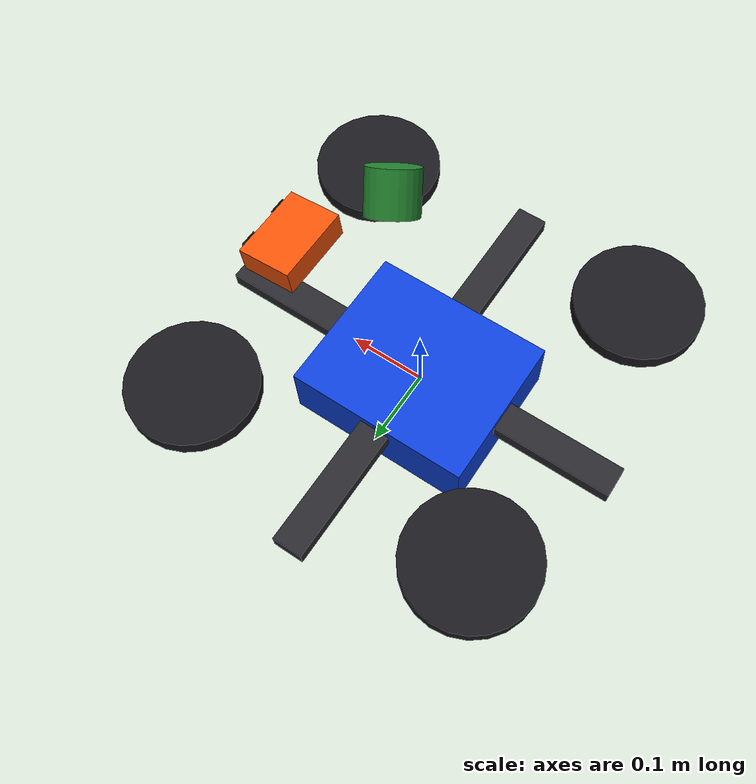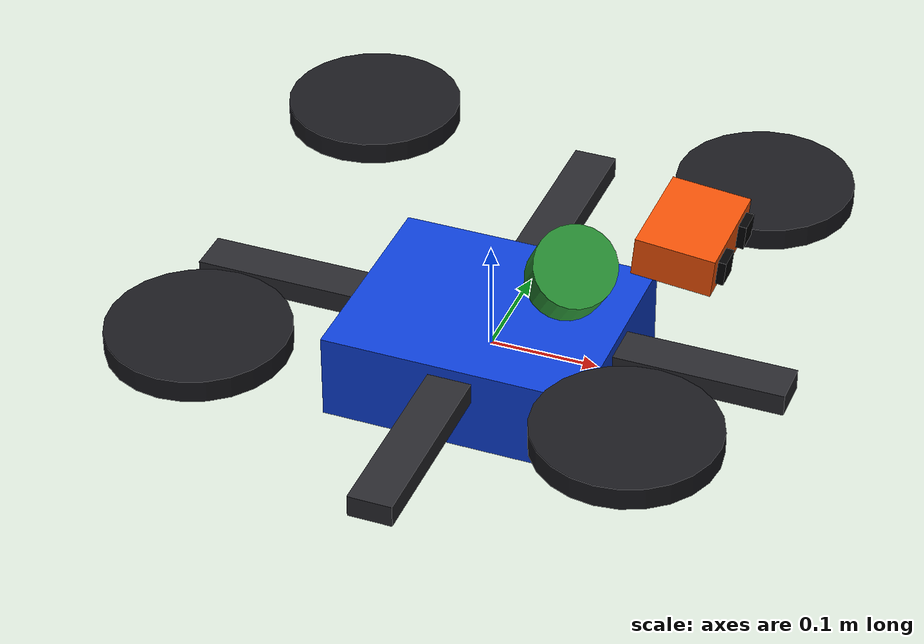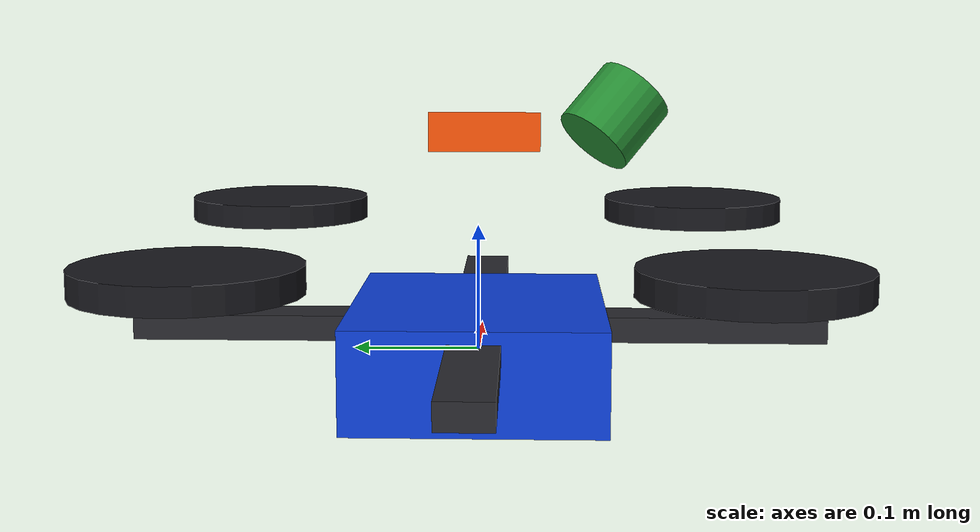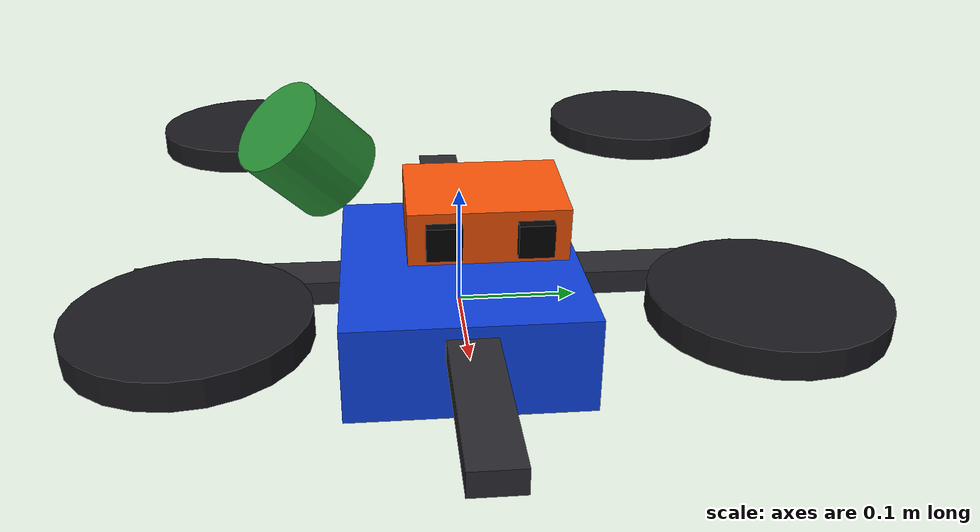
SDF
<?xml version="1.0"?>
<sdf version="1.9">
  <model name="uav_quad_mid360" xmlns:gz="http://gazebosim.org/schema">
    <link name="base_link">
      <inertial>
        <mass>1.5</mass>
        <inertia>
          <ixx>0.035</ixx>
          <iyy>0.035</iyy>
          <izz>0.06</izz>
        </inertia>
      </inertial>
      <collision name="collision">
        <geometry><box><size>0.55 0.55 0.10</size></box></geometry>
      </collision>
      <visual name="body_fuselage">
        <geometry><box><size>0.24 0.20 0.08</size></box></geometry>
        <material>
          <ambient>0.04 0.18 0.55 1</ambient>
          <diffuse>0.05 0.25 0.85 1</diffuse>
        </material>
      </visual>
      <visual name="arm_x">
        <pose>0 0 0.02 0 0 0</pose>
        <geometry><box><size>0.55 0.04 0.02</size></box></geometry>
        <material>
          <ambient>0.10 0.10 0.12 1</ambient>
          <diffuse>0.16 0.16 0.18 1</diffuse>
        </material>
      </visual>
      <visual name="arm_y">
        <pose>0 0 0.02 0 0 1.57079632679</pose>
        <geometry><box><size>0.55 0.04 0.02</size></box></geometry>
        <material>
          <ambient>0.10 0.10 0.12 1</ambient>
          <diffuse>0.16 0.16 0.18 1</diffuse>
        </material>
      </visual>
      <visual name="rotor_front_left">
        <pose>0.19 0.19 0.09 0 0 0</pose>
        <geometry><cylinder><radius>0.08</radius><length>0.02</length></cylinder></geometry>
        <material><ambient>0.05 0.05 0.06 1</ambient><diffuse>0.10 0.10 0.12 1</diffuse></material>
      </visual>
      <visual name="rotor_front_right">
        <pose>0.19 -0.19 0.09 0 0 0</pose>
        <geometry><cylinder><radius>0.08</radius><length>0.02</length></cylinder></geometry>
        <material><ambient>0.05 0.05 0.06 1</ambient><diffuse>0.10 0.10 0.12 1</diffuse></material>
      </visual>
      <visual name="rotor_rear_left">
        <pose>-0.19 0.19 0.09 0 0 0</pose>
        <geometry><cylinder><radius>0.08</radius><length>0.02</length></cylinder></geometry>
        <material><ambient>0.05 0.05 0.06 1</ambient><diffuse>0.10 0.10 0.12 1</diffuse></material>
      </visual>
      <visual name="rotor_rear_right">
        <pose>-0.19 -0.19 0.09 0 0 0</pose>
        <geometry><cylinder><radius>0.08</radius><length>0.02</length></cylinder></geometry>
        <material><ambient>0.05 0.05 0.06 1</ambient><diffuse>0.10 0.10 0.12 1</diffuse></material>
      </visual>
    </link>

    <!-- Gazebo cameras look along local +X. Positive pitch rotates +X toward
         the ground, so this forward-looking OAK-D mount has a 5-degree
         downward tilt relative to the UAV body. -->
    <link name="oakd_camera_link">
      <pose relative_to="base_link">0.18 0 0.16 0 0.08726646260 0</pose>
      <inertial>
        <mass>0.1</mass>
        <inertia>
          <ixx>0.0002</ixx>
          <iyy>0.0002</iyy>
          <izz>0.0002</izz>
        </inertia>
      </inertial>
      <visual name="camera_body">
        <geometry><box><size>0.07 0.10 0.035</size></box></geometry>
        <material>
          <ambient>0.55 0.15 0.01 1</ambient>
          <diffuse>0.95 0.32 0.03 1</diffuse>
        </material>
      </visual>
      <visual name="left_lens">
        <pose>0.038 0.028 0 0 0 0</pose>
        <geometry><box><size>0.008 0.022 0.022</size></box></geometry>
        <material>
          <ambient>0.01 0.01 0.015 1</ambient>
          <diffuse>0.01 0.01 0.015 1</diffuse>
        </material>
      </visual>
      <visual name="right_lens">
        <pose>0.038 -0.028 0 0 0 0</pose>
        <geometry><box><size>0.008 0.022 0.022</size></box></geometry>
        <material>
          <ambient>0.01 0.01 0.015 1</ambient>
          <diffuse>0.01 0.01 0.015 1</diffuse>
        </material>
      </visual>
      <sensor name="oakd_imu" type="imu">
        <always_on>true</always_on>
        <update_rate>200</update_rate>
        <topic>/oakd/imu/raw</topic>
        <gz_frame_id>oakd_imu_link</gz_frame_id>
      </sensor>
      <sensor name="oakd_rgbd" type="rgbd_camera">
        <always_on>true</always_on>
        <update_rate>15</update_rate>
        <topic>rgbd_camera</topic>
        <camera>
          <horizontal_fov>1.21</horizontal_fov>
          <image>
            <width>640</width>
            <height>400</height>
          </image>
          <clip>
            <near>0.15</near>
            <far>8.0</far>
          </clip>
          <optical_frame_id>oakd_camera_optical_frame</optical_frame_id>
        </camera>
      </sensor>
    </link>
    <joint name="oakd_fixed_joint" type="fixed">
      <parent>base_link</parent>
      <child>oakd_camera_link</child>
    </joint>

    <!-- MID360 sensor mount. Keep this pose in sync with the
         base_link -> mid360_link static transform published by
         gazebo_harmonic_nav.launch.py. -->
    <link name="mid360_link">
      <pose relative_to="base_link">0.113137085 -0.113137085 0.18 0.7853981634 0 0.5235987756</pose>
      <inertial>
        <mass>0.03</mass>
        <inertia>
          <ixx>0.00001</ixx>
          <iyy>0.00001</iyy>
          <izz>0.00001</izz>
        </inertia>
      </inertial>
      <visual name="mid360_body">
        <geometry><cylinder><radius>0.035</radius><length>0.06</length></cylinder></geometry>
        <material>
          <ambient>0.10 0.35 0.10 1</ambient>
          <diffuse>0.15 0.55 0.20 1</diffuse>
        </material>
      </visual>
      <sensor name="mid360_lidar" type="gpu_lidar">
        <always_on>true</always_on>
        <update_rate>20</update_rate>
        <topic>/mid360</topic>
        <lidar>
          <scan>
            <horizontal>
              <samples>1875</samples>
              <resolution>1</resolution>
              <min_angle>-3.14159265359</min_angle>
              <max_angle>3.14159265359</max_angle>
            </horizontal>
            <vertical>
              <samples>32</samples>
              <resolution>1</resolution>
              <min_angle>-0.12217304764</min_angle>
              <max_angle>0.90757121104</max_angle>
            </vertical>
          </scan>
          <range>
            <min>0.1</min>
            <max>40.0</max>
            <resolution>0.02</resolution>
          </range>
        </lidar>
        <visualize>true</visualize>
      </sensor>
      <sensor name="mid360_imu" type="imu">
        <always_on>true</always_on>
        <update_rate>200</update_rate>
        <topic>/mid360/imu</topic>
        <gz_frame_id>mid360_link</gz_frame_id>
      </sensor>
    </link>
    <joint name="mid360_fixed_joint" type="fixed">
      <parent>base_link</parent>
      <child>mid360_link</child>
    </joint>

    <plugin filename="gz-sim-velocity-control-system" name="gz::sim::systems::VelocityControl">
      <topic>/cmd_vel</topic>
      <link_name>base_link</link_name>
      <initial_linear>0 0 0</initial_linear>
      <initial_angular>0 0 0</initial_angular>
    </plugin>
    <plugin filename="gz-sim-odometry-publisher-system" name="gz::sim::systems::OdometryPublisher">
      <odom_frame>odom</odom_frame>
      <robot_base_frame>base_link</robot_base_frame>
      <!-- 3D pose is required so nvblox receives the full UAV/camera pose. -->
      <dimensions>3</dimensions>
      <odom_topic>/visual_slam/tracking/odometry</odom_topic>
      <tf_topic>/tf</tf_topic>
      <odom_publish_frequency>50</odom_publish_frequency>
    </plugin>
  </model>
</sdf>
